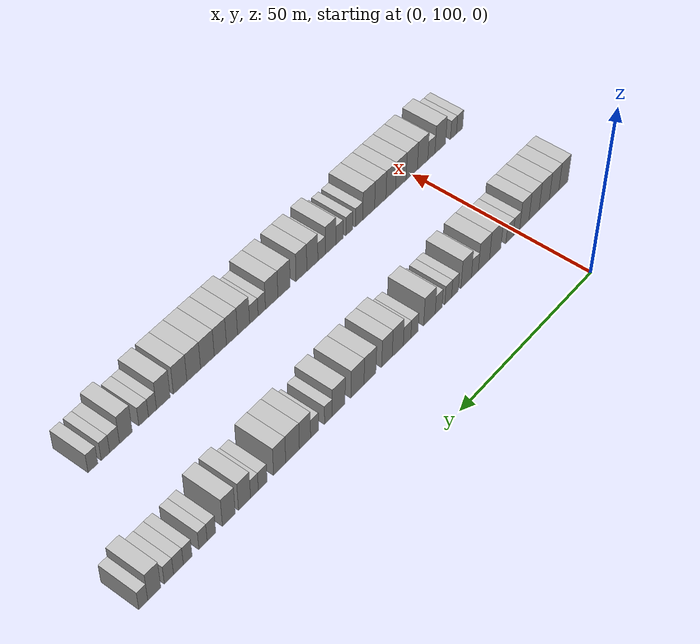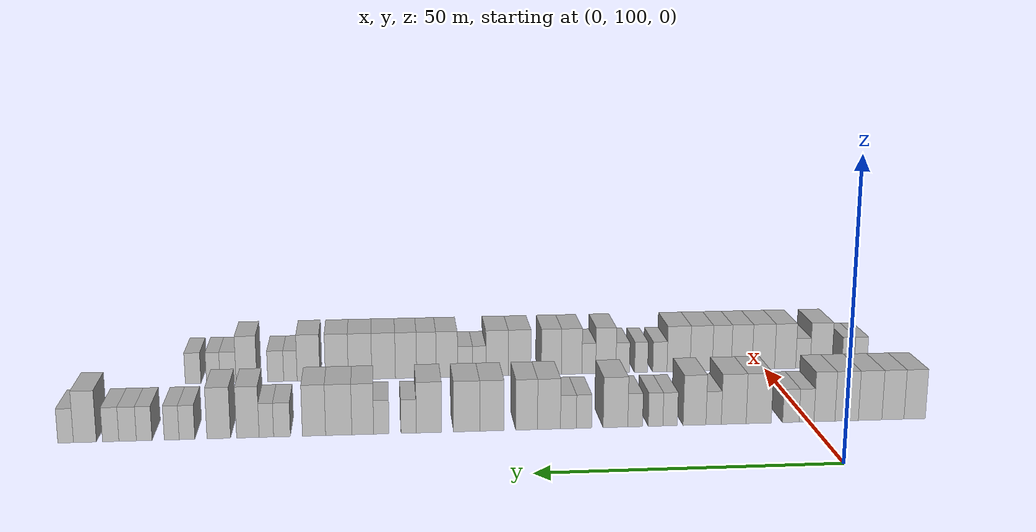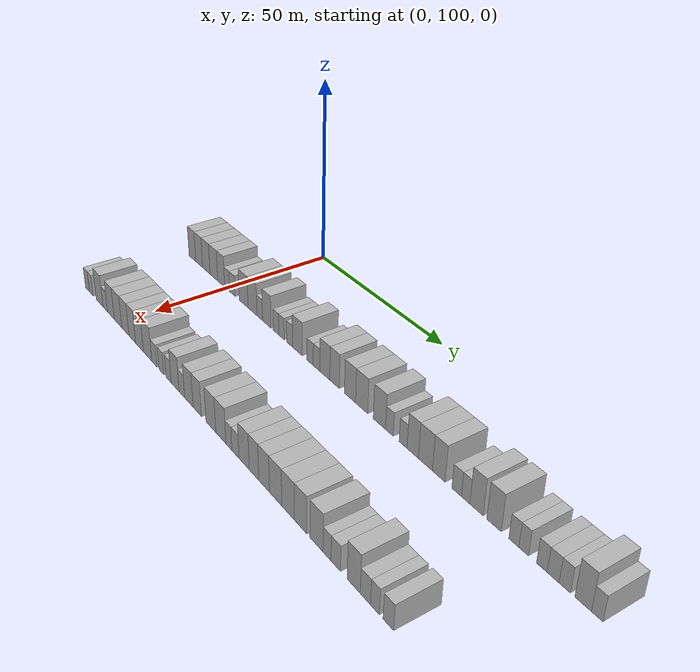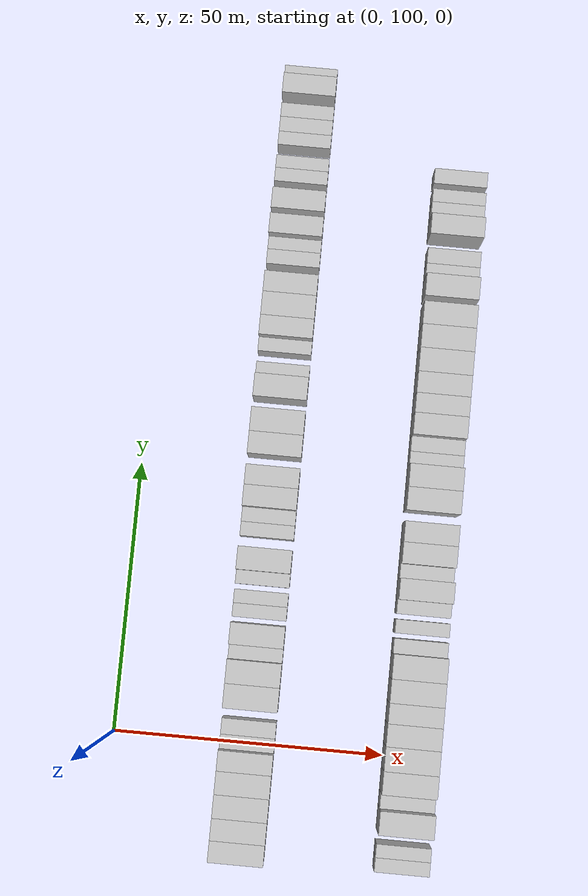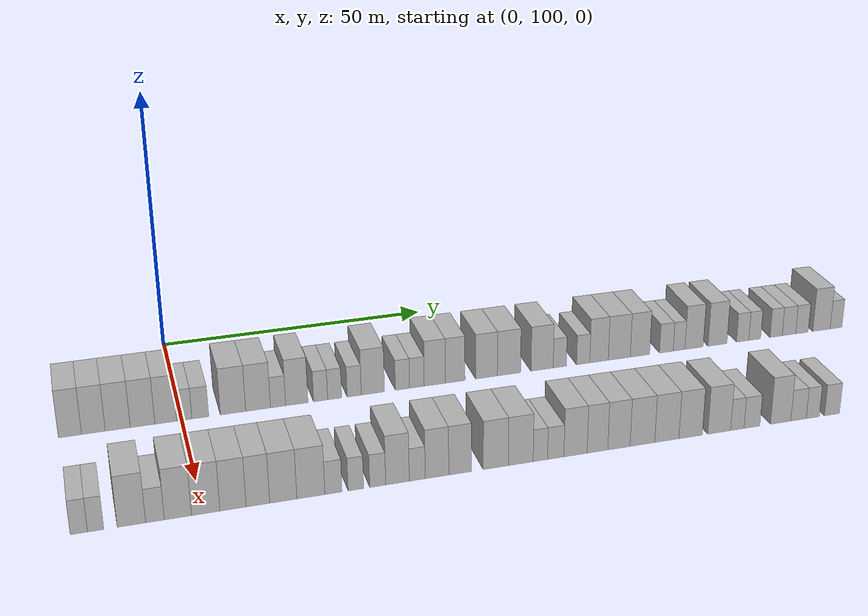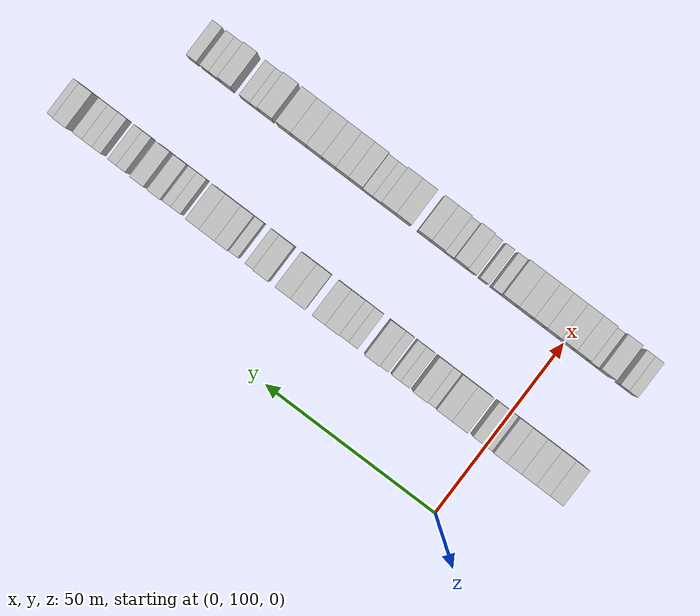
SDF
<sdf version="1.6">
 <world name="default">
  <model name="building_132">
   <static>1</static>
   <pose>25.0000 81.2113 0 0.000000 0.000000 0.000000</pose>
   <link name="link">
    <pose>0 0 4.50 0 0 0</pose>
    <collision name="collision"><geometry><box><size>10.0000 3.8207 9.0000</size></box></geometry></collision>
    <visual name="visual">
     <cast_shadows>0</cast_shadows>
     <geometry><box><size>10.0000 3.8207 9.0000</size></box></geometry>
     <material>
      <script>
       <uri>model://HANNAS_wall/materials/scripts</uri>
       <uri>model://HANNAS_wall/materials/textures</uri>
       <name>vrc/HANNAS_wall</name>
      </script>
     </material>
    </visual>
   </link>
  </model>
  <model name="building_133">
   <static>1</static>
   <pose>25.0000 85.0936 0 0.000000 0.000000 0.000000</pose>
   <link name="link">
    <pose>0 0 4.50 0 0 0</pose>
    <collision name="collision"><geometry><box><size>10.0000 3.9438 9.0000</size></box></geometry></collision>
    <visual name="visual">
     <cast_shadows>0</cast_shadows>
     <geometry><box><size>10.0000 3.9438 9.0000</size></box></geometry>
     <material>
      <script>
       <uri>model://HANNAS_wall/materials/scripts</uri>
       <uri>model://HANNAS_wall/materials/textures</uri>
       <name>vrc/HANNAS_wall</name>
      </script>
     </material>
    </visual>
   </link>
  </model>
  <model name="building_134">
   <static>1</static>
   <pose>25.0000 89.1573 0 0.000000 0.000000 0.000000</pose>
   <link name="link">
    <pose>0 0 4.50 0 0 0</pose>
    <collision name="collision"><geometry><box><size>10.0000 4.1837 9.0000</size></box></geometry></collision>
    <visual name="visual">
     <cast_shadows>0</cast_shadows>
     <geometry><box><size>10.0000 4.1837 9.0000</size></box></geometry>
     <material>
      <script>
       <uri>model://HANNAS_wall/materials/scripts</uri>
       <uri>model://HANNAS_wall/materials/textures</uri>
       <name>vrc/HANNAS_wall</name>
      </script>
     </material>
    </visual>
   </link>
  </model>
  <model name="building_135">
   <static>1</static>
   <pose>25.0000 93.3286 0 0.000000 0.000000 0.000000</pose>
   <link name="link">
    <pose>0 0 4.50 0 0 0</pose>
    <collision name="collision"><geometry><box><size>10.0000 4.1589 9.0000</size></box></geometry></collision>
    <visual name="visual">
     <cast_shadows>0</cast_shadows>
     <geometry><box><size>10.0000 4.1589 9.0000</size></box></geometry>
     <material>
      <script>
       <uri>model://HANNAS_wall/materials/scripts</uri>
       <uri>model://HANNAS_wall/materials/textures</uri>
       <name>vrc/HANNAS_wall</name>
      </script>
     </material>
    </visual>
   </link>
  </model>
  <model name="building_136">
   <static>1</static>
   <pose>25.0000 97.2637 0 0.000000 0.000000 0.000000</pose>
   <link name="link">
    <pose>0 0 4.50 0 0 0</pose>
    <collision name="collision"><geometry><box><size>10.0000 3.7111 9.0000</size></box></geometry></collision>
    <visual name="visual">
     <cast_shadows>0</cast_shadows>
     <geometry><box><size>10.0000 3.7111 9.0000</size></box></geometry>
     <material>
      <script>
       <uri>model://HANNAS_wall/materials/scripts</uri>
       <uri>model://HANNAS_wall/materials/textures</uri>
       <name>vrc/HANNAS_wall</name>
      </script>
     </material>
    </visual>
   </link>
  </model>
  <model name="building_137">
   <static>1</static>
   <pose>25.0000 100.4267 0 0.000000 0.000000 0.000000</pose>
   <link name="link">
    <pose>0 0 3.00 0 0 0</pose>
    <collision name="collision"><geometry><box><size>10.0000 2.6149 6.0000</size></box></geometry></collision>
    <visual name="visual">
     <cast_shadows>0</cast_shadows>
     <geometry><box><size>10.0000 2.6149 6.0000</size></box></geometry>
     <material>
      <script>
       <uri>model://HANNAS_wall/materials/scripts</uri>
       <uri>model://HANNAS_wall/materials/textures</uri>
       <name>vrc/HANNAS_wall</name>
      </script>
     </material>
    </visual>
   </link>
  </model>
  <model name="building_138">
   <static>1</static>
   <pose>25.0000 103.1845 0 0.000000 0.000000 0.000000</pose>
   <link name="link">
    <pose>0 0 3.00 0 0 0</pose>
    <collision name="collision"><geometry><box><size>10.0000 2.9007 6.0000</size></box></geometry></collision>
    <visual name="visual">
     <cast_shadows>0</cast_shadows>
     <geometry><box><size>10.0000 2.9007 6.0000</size></box></geometry>
     <material>
      <script>
       <uri>model://HANNAS_wall/materials/scripts</uri>
       <uri>model://HANNAS_wall/materials/textures</uri>
       <name>vrc/HANNAS_wall</name>
      </script>
     </material>
    </visual>
   </link>
  </model>
  <model name="building_139">
   <static>1</static>
   <pose>25.0000 108.8482 0 0.000000 0.000000 0.000000</pose>
   <link name="link">
    <pose>0 0 4.50 0 0 0</pose>
    <collision name="collision"><geometry><box><size>10.0000 4.4268 9.0000</size></box></geometry></collision>
    <visual name="visual">
     <cast_shadows>0</cast_shadows>
     <geometry><box><size>10.0000 4.4268 9.0000</size></box></geometry>
     <material>
      <script>
       <uri>model://HANNAS_wall/materials/scripts</uri>
       <uri>model://HANNAS_wall/materials/textures</uri>
       <name>vrc/HANNAS_wall</name>
      </script>
     </material>
    </visual>
   </link>
  </model>
  <model name="building_140">
   <static>1</static>
   <pose>25.0000 113.2394 0 0.000000 0.000000 0.000000</pose>
   <link name="link">
    <pose>0 0 4.50 0 0 0</pose>
    <collision name="collision"><geometry><box><size>10.0000 4.3557 9.0000</size></box></geometry></collision>
    <visual name="visual">
     <cast_shadows>0</cast_shadows>
     <geometry><box><size>10.0000 4.3557 9.0000</size></box></geometry>
     <material>
      <script>
       <uri>model://HANNAS_wall/materials/scripts</uri>
       <uri>model://HANNAS_wall/materials/textures</uri>
       <name>vrc/HANNAS_wall</name>
      </script>
     </material>
    </visual>
   </link>
  </model>
  <model name="building_141">
   <static>1</static>
   <pose>25.0000 116.7583 0 0.000000 0.000000 0.000000</pose>
   <link name="link">
    <pose>0 0 3.00 0 0 0</pose>
    <collision name="collision"><geometry><box><size>10.0000 2.6821 6.0000</size></box></geometry></collision>
    <visual name="visual">
     <cast_shadows>0</cast_shadows>
     <geometry><box><size>10.0000 2.6821 6.0000</size></box></geometry>
     <material>
      <script>
       <uri>model://HANNAS_wall/materials/scripts</uri>
       <uri>model://HANNAS_wall/materials/textures</uri>
       <name>vrc/HANNAS_wall</name>
      </script>
     </material>
    </visual>
   </link>
  </model>
  <model name="building_142">
   <static>1</static>
   <pose>25.0000 120.0887 0 0.000000 0.000000 0.000000</pose>
   <link name="link">
    <pose>0 0 4.50 0 0 0</pose>
    <collision name="collision"><geometry><box><size>10.0000 3.9787 9.0000</size></box></geometry></collision>
    <visual name="visual">
     <cast_shadows>0</cast_shadows>
     <geometry><box><size>10.0000 3.9787 9.0000</size></box></geometry>
     <material>
      <script>
       <uri>model://HANNAS_wall/materials/scripts</uri>
       <uri>model://HANNAS_wall/materials/textures</uri>
       <name>vrc/HANNAS_wall</name>
      </script>
     </material>
    </visual>
   </link>
  </model>
  <model name="building_143">
   <static>1</static>
   <pose>25.0000 124.3410 0 0.000000 0.000000 0.000000</pose>
   <link name="link">
    <pose>0 0 3.00 0 0 0</pose>
    <collision name="collision"><geometry><box><size>10.0000 2.5258 6.0000</size></box></geometry></collision>
    <visual name="visual">
     <cast_shadows>0</cast_shadows>
     <geometry><box><size>10.0000 2.5258 6.0000</size></box></geometry>
     <material>
      <script>
       <uri>model://HANNAS_wall/materials/scripts</uri>
       <uri>model://HANNAS_wall/materials/textures</uri>
       <name>vrc/HANNAS_wall</name>
      </script>
     </material>
    </visual>
   </link>
  </model>
  <model name="building_144">
   <static>1</static>
   <pose>25.0000 126.8680 0 0.000000 0.000000 0.000000</pose>
   <link name="link">
    <pose>0 0 3.00 0 0 0</pose>
    <collision name="collision"><geometry><box><size>10.0000 2.5282 6.0000</size></box></geometry></collision>
    <visual name="visual">
     <cast_shadows>0</cast_shadows>
     <geometry><box><size>10.0000 2.5282 6.0000</size></box></geometry>
     <material>
      <script>
       <uri>model://HANNAS_wall/materials/scripts</uri>
       <uri>model://HANNAS_wall/materials/textures</uri>
       <name>vrc/HANNAS_wall</name>
      </script>
     </material>
    </visual>
   </link>
  </model>
  <model name="building_145">
   <static>1</static>
   <pose>25.0000 130.4140 0 0.000000 0.000000 0.000000</pose>
   <link name="link">
    <pose>0 0 3.00 0 0 0</pose>
    <collision name="collision"><geometry><box><size>10.0000 2.5638 6.0000</size></box></geometry></collision>
    <visual name="visual">
     <cast_shadows>0</cast_shadows>
     <geometry><box><size>10.0000 2.5638 6.0000</size></box></geometry>
     <material>
      <script>
       <uri>model://HANNAS_wall/materials/scripts</uri>
       <uri>model://HANNAS_wall/materials/textures</uri>
       <name>vrc/HANNAS_wall</name>
      </script>
     </material>
    </visual>
   </link>
  </model>
  <model name="building_146">
   <static>1</static>
   <pose>25.0000 133.8219 0 0.000000 0.000000 0.000000</pose>
   <link name="link">
    <pose>0 0 4.50 0 0 0</pose>
    <collision name="collision"><geometry><box><size>10.0000 4.2521 9.0000</size></box></geometry></collision>
    <visual name="visual">
     <cast_shadows>0</cast_shadows>
     <geometry><box><size>10.0000 4.2521 9.0000</size></box></geometry>
     <material>
      <script>
       <uri>model://HANNAS_wall/materials/scripts</uri>
       <uri>model://HANNAS_wall/materials/textures</uri>
       <name>vrc/HANNAS_wall</name>
      </script>
     </material>
    </visual>
   </link>
  </model>
  <model name="building_147">
   <static>1</static>
   <pose>25.0000 139.2651 0 0.000000 0.000000 0.000000</pose>
   <link name="link">
    <pose>0 0 3.00 0 0 0</pose>
    <collision name="collision"><geometry><box><size>10.0000 2.6343 6.0000</size></box></geometry></collision>
    <visual name="visual">
     <cast_shadows>0</cast_shadows>
     <geometry><box><size>10.0000 2.6343 6.0000</size></box></geometry>
     <material>
      <script>
       <uri>model://HANNAS_wall/materials/scripts</uri>
       <uri>model://HANNAS_wall/materials/textures</uri>
       <name>vrc/HANNAS_wall</name>
      </script>
     </material>
    </visual>
   </link>
  </model>
  <model name="building_148">
   <static>1</static>
   <pose>25.0000 141.9477 0 0.000000 0.000000 0.000000</pose>
   <link name="link">
    <pose>0 0 3.00 0 0 0</pose>
    <collision name="collision"><geometry><box><size>10.0000 2.7309 6.0000</size></box></geometry></collision>
    <visual name="visual">
     <cast_shadows>0</cast_shadows>
     <geometry><box><size>10.0000 2.7309 6.0000</size></box></geometry>
     <material>
      <script>
       <uri>model://HANNAS_wall/materials/scripts</uri>
       <uri>model://HANNAS_wall/materials/textures</uri>
       <name>vrc/HANNAS_wall</name>
      </script>
     </material>
    </visual>
   </link>
  </model>
  <model name="building_149">
   <static>1</static>
   <pose>25.0000 145.2838 0 0.000000 0.000000 0.000000</pose>
   <link name="link">
    <pose>0 0 4.50 0 0 0</pose>
    <collision name="collision"><geometry><box><size>10.0000 3.9415 9.0000</size></box></geometry></collision>
    <visual name="visual">
     <cast_shadows>0</cast_shadows>
     <geometry><box><size>10.0000 3.9415 9.0000</size></box></geometry>
     <material>
      <script>
       <uri>model://HANNAS_wall/materials/scripts</uri>
       <uri>model://HANNAS_wall/materials/textures</uri>
       <name>vrc/HANNAS_wall</name>
      </script>
     </material>
    </visual>
   </link>
  </model>
  <model name="building_150">
   <static>1</static>
   <pose>25.0000 149.1195 0 0.000000 0.000000 0.000000</pose>
   <link name="link">
    <pose>0 0 4.50 0 0 0</pose>
    <collision name="collision"><geometry><box><size>10.0000 3.7299 9.0000</size></box></geometry></collision>
    <visual name="visual">
     <cast_shadows>0</cast_shadows>
     <geometry><box><size>10.0000 3.7299 9.0000</size></box></geometry>
     <material>
      <script>
       <uri>model://HANNAS_wall/materials/scripts</uri>
       <uri>model://HANNAS_wall/materials/textures</uri>
       <name>vrc/HANNAS_wall</name>
      </script>
     </material>
    </visual>
   </link>
  </model>
  <model name="building_151">
   <static>1</static>
   <pose>25.0000 155.0557 0 0.000000 0.000000 0.000000</pose>
   <link name="link">
    <pose>0 0 4.50 0 0 0</pose>
    <collision name="collision"><geometry><box><size>10.0000 4.1423 9.0000</size></box></geometry></collision>
    <visual name="visual">
     <cast_shadows>0</cast_shadows>
     <geometry><box><size>10.0000 4.1423 9.0000</size></box></geometry>
     <material>
      <script>
       <uri>model://HANNAS_wall/materials/scripts</uri>
       <uri>model://HANNAS_wall/materials/textures</uri>
       <name>vrc/HANNAS_wall</name>
      </script>
     </material>
    </visual>
   </link>
  </model>
  <model name="building_152">
   <static>1</static>
   <pose>25.0000 159.3623 0 0.000000 0.000000 0.000000</pose>
   <link name="link">
    <pose>0 0 4.50 0 0 0</pose>
    <collision name="collision"><geometry><box><size>10.0000 4.4710 9.0000</size></box></geometry></collision>
    <visual name="visual">
     <cast_shadows>0</cast_shadows>
     <geometry><box><size>10.0000 4.4710 9.0000</size></box></geometry>
     <material>
      <script>
       <uri>model://HANNAS_wall/materials/scripts</uri>
       <uri>model://HANNAS_wall/materials/textures</uri>
       <name>vrc/HANNAS_wall</name>
      </script>
     </material>
    </visual>
   </link>
  </model>
  <model name="building_153">
   <static>1</static>
   <pose>25.0000 165.7555 0 0.000000 0.000000 0.000000</pose>
   <link name="link">
    <pose>0 0 4.50 0 0 0</pose>
    <collision name="collision"><geometry><box><size>10.0000 4.3155 9.0000</size></box></geometry></collision>
    <visual name="visual">
     <cast_shadows>0</cast_shadows>
     <geometry><box><size>10.0000 4.3155 9.0000</size></box></geometry>
     <material>
      <script>
       <uri>model://HANNAS_wall/materials/scripts</uri>
       <uri>model://HANNAS_wall/materials/textures</uri>
       <name>vrc/HANNAS_wall</name>
      </script>
     </material>
    </visual>
   </link>
  </model>
  <model name="building_154">
   <static>1</static>
   <pose>25.0000 169.2103 0 0.000000 0.000000 0.000000</pose>
   <link name="link">
    <pose>0 0 3.00 0 0 0</pose>
    <collision name="collision"><geometry><box><size>10.0000 2.5942 6.0000</size></box></geometry></collision>
    <visual name="visual">
     <cast_shadows>0</cast_shadows>
     <geometry><box><size>10.0000 2.5942 6.0000</size></box></geometry>
     <material>
      <script>
       <uri>model://HANNAS_wall/materials/scripts</uri>
       <uri>model://HANNAS_wall/materials/textures</uri>
       <name>vrc/HANNAS_wall</name>
      </script>
     </material>
    </visual>
   </link>
  </model>
  <model name="building_155">
   <static>1</static>
   <pose>25.0000 173.8143 0 0.000000 0.000000 0.000000</pose>
   <link name="link">
    <pose>0 0 3.00 0 0 0</pose>
    <collision name="collision"><geometry><box><size>10.0000 2.6137 6.0000</size></box></geometry></collision>
    <visual name="visual">
     <cast_shadows>0</cast_shadows>
     <geometry><box><size>10.0000 2.6137 6.0000</size></box></geometry>
     <material>
      <script>
       <uri>model://HANNAS_wall/materials/scripts</uri>
       <uri>model://HANNAS_wall/materials/textures</uri>
       <name>vrc/HANNAS_wall</name>
      </script>
     </material>
    </visual>
   </link>
  </model>
  <model name="building_156">
   <static>1</static>
   <pose>25.0000 176.9597 0 0.000000 0.000000 0.000000</pose>
   <link name="link">
    <pose>0 0 4.50 0 0 0</pose>
    <collision name="collision"><geometry><box><size>10.0000 3.6771 9.0000</size></box></geometry></collision>
    <visual name="visual">
     <cast_shadows>0</cast_shadows>
     <geometry><box><size>10.0000 3.6771 9.0000</size></box></geometry>
     <material>
      <script>
       <uri>model://HANNAS_wall/materials/scripts</uri>
       <uri>model://HANNAS_wall/materials/textures</uri>
       <name>vrc/HANNAS_wall</name>
      </script>
     </material>
    </visual>
   </link>
  </model>
  <model name="building_157">
   <static>1</static>
   <pose>25.0000 181.0077 0 0.000000 0.000000 0.000000</pose>
   <link name="link">
    <pose>0 0 4.50 0 0 0</pose>
    <collision name="collision"><geometry><box><size>10.0000 4.4190 9.0000</size></box></geometry></collision>
    <visual name="visual">
     <cast_shadows>0</cast_shadows>
     <geometry><box><size>10.0000 4.4190 9.0000</size></box></geometry>
     <material>
      <script>
       <uri>model://HANNAS_wall/materials/scripts</uri>
       <uri>model://HANNAS_wall/materials/textures</uri>
       <name>vrc/HANNAS_wall</name>
      </script>
     </material>
    </visual>
   </link>
  </model>
  <model name="building_158">
   <static>1</static>
   <pose>25.0000 185.1635 0 0.000000 0.000000 0.000000</pose>
   <link name="link">
    <pose>0 0 4.50 0 0 0</pose>
    <collision name="collision"><geometry><box><size>10.0000 3.8928 9.0000</size></box></geometry></collision>
    <visual name="visual">
     <cast_shadows>0</cast_shadows>
     <geometry><box><size>10.0000 3.8928 9.0000</size></box></geometry>
     <material>
      <script>
       <uri>model://HANNAS_wall/materials/scripts</uri>
       <uri>model://HANNAS_wall/materials/textures</uri>
       <name>vrc/HANNAS_wall</name>
      </script>
     </material>
    </visual>
   </link>
  </model>
  <model name="building_159">
   <static>1</static>
   <pose>25.0000 190.5115 0 0.000000 0.000000 0.000000</pose>
   <link name="link">
    <pose>0 0 3.00 0 0 0</pose>
    <collision name="collision"><geometry><box><size>10.0000 2.8032 6.0000</size></box></geometry></collision>
    <visual name="visual">
     <cast_shadows>0</cast_shadows>
     <geometry><box><size>10.0000 2.8032 6.0000</size></box></geometry>
     <material>
      <script>
       <uri>model://HANNAS_wall/materials/scripts</uri>
       <uri>model://HANNAS_wall/materials/textures</uri>
       <name>vrc/HANNAS_wall</name>
      </script>
     </material>
    </visual>
   </link>
  </model>
  <model name="building_160">
   <static>1</static>
   <pose>25.0000 193.1203 0 0.000000 0.000000 0.000000</pose>
   <link name="link">
    <pose>0 0 3.00 0 0 0</pose>
    <collision name="collision"><geometry><box><size>10.0000 2.4143 6.0000</size></box></geometry></collision>
    <visual name="visual">
     <cast_shadows>0</cast_shadows>
     <geometry><box><size>10.0000 2.4143 6.0000</size></box></geometry>
     <material>
      <script>
       <uri>model://HANNAS_wall/materials/scripts</uri>
       <uri>model://HANNAS_wall/materials/textures</uri>
       <name>vrc/HANNAS_wall</name>
      </script>
     </material>
    </visual>
   </link>
  </model>
  <model name="building_161">
   <static>1</static>
   <pose>25.0000 196.2036 0 0.000000 0.000000 0.000000</pose>
   <link name="link">
    <pose>0 0 4.50 0 0 0</pose>
    <collision name="collision"><geometry><box><size>10.0000 3.7524 9.0000</size></box></geometry></collision>
    <visual name="visual">
     <cast_shadows>0</cast_shadows>
     <geometry><box><size>10.0000 3.7524 9.0000</size></box></geometry>
     <material>
      <script>
       <uri>model://HANNAS_wall/materials/scripts</uri>
       <uri>model://HANNAS_wall/materials/textures</uri>
       <name>vrc/HANNAS_wall</name>
      </script>
     </material>
    </visual>
   </link>
  </model>
  <model name="building_162">
   <static>1</static>
   <pose>25.0000 201.0388 0 0.000000 0.000000 0.000000</pose>
   <link name="link">
    <pose>0 0 4.50 0 0 0</pose>
    <collision name="collision"><geometry><box><size>10.0000 3.9179 9.0000</size></box></geometry></collision>
    <visual name="visual">
     <cast_shadows>0</cast_shadows>
     <geometry><box><size>10.0000 3.9179 9.0000</size></box></geometry>
     <material>
      <script>
       <uri>model://HANNAS_wall/materials/scripts</uri>
       <uri>model://HANNAS_wall/materials/textures</uri>
       <name>vrc/HANNAS_wall</name>
      </script>
     </material>
    </visual>
   </link>
  </model>
  <model name="building_163">
   <static>1</static>
   <pose>25.0000 206.2953 0 0.000000 0.000000 0.000000</pose>
   <link name="link">
    <pose>0 0 3.00 0 0 0</pose>
    <collision name="collision"><geometry><box><size>10.0000 2.5952 6.0000</size></box></geometry></collision>
    <visual name="visual">
     <cast_shadows>0</cast_shadows>
     <geometry><box><size>10.0000 2.5952 6.0000</size></box></geometry>
     <material>
      <script>
       <uri>model://HANNAS_wall/materials/scripts</uri>
       <uri>model://HANNAS_wall/materials/textures</uri>
       <name>vrc/HANNAS_wall</name>
      </script>
     </material>
    </visual>
   </link>
  </model>
  <model name="building_164">
   <static>1</static>
   <pose>25.0000 208.8275 0 0.000000 0.000000 0.000000</pose>
   <link name="link">
    <pose>0 0 3.00 0 0 0</pose>
    <collision name="collision"><geometry><box><size>10.0000 2.4691 6.0000</size></box></geometry></collision>
    <visual name="visual">
     <cast_shadows>0</cast_shadows>
     <geometry><box><size>10.0000 2.4691 6.0000</size></box></geometry>
     <material>
      <script>
       <uri>model://HANNAS_wall/materials/scripts</uri>
       <uri>model://HANNAS_wall/materials/textures</uri>
       <name>vrc/HANNAS_wall</name>
      </script>
     </material>
    </visual>
   </link>
  </model>
  <model name="building_165">
   <static>1</static>
   <pose>25.0000 213.3538 0 0.000000 0.000000 0.000000</pose>
   <link name="link">
    <pose>0 0 3.00 0 0 0</pose>
    <collision name="collision"><geometry><box><size>10.0000 2.5835 6.0000</size></box></geometry></collision>
    <visual name="visual">
     <cast_shadows>0</cast_shadows>
     <geometry><box><size>10.0000 2.5835 6.0000</size></box></geometry>
     <material>
      <script>
       <uri>model://HANNAS_wall/materials/scripts</uri>
       <uri>model://HANNAS_wall/materials/textures</uri>
       <name>vrc/HANNAS_wall</name>
      </script>
     </material>
    </visual>
   </link>
  </model>
  <model name="building_166">
   <static>1</static>
   <pose>25.0000 216.0824 0 0.000000 0.000000 0.000000</pose>
   <link name="link">
    <pose>0 0 3.00 0 0 0</pose>
    <collision name="collision"><geometry><box><size>10.0000 2.8736 6.0000</size></box></geometry></collision>
    <visual name="visual">
     <cast_shadows>0</cast_shadows>
     <geometry><box><size>10.0000 2.8736 6.0000</size></box></geometry>
     <material>
      <script>
       <uri>model://HANNAS_wall/materials/scripts</uri>
       <uri>model://HANNAS_wall/materials/textures</uri>
       <name>vrc/HANNAS_wall</name>
      </script>
     </material>
    </visual>
   </link>
  </model>
  <model name="building_167">
   <static>1</static>
   <pose>25.0000 218.8632 0 0.000000 0.000000 0.000000</pose>
   <link name="link">
    <pose>0 0 3.00 0 0 0</pose>
    <collision name="collision"><geometry><box><size>10.0000 2.6880 6.0000</size></box></geometry></collision>
    <visual name="visual">
     <cast_shadows>0</cast_shadows>
     <geometry><box><size>10.0000 2.6880 6.0000</size></box></geometry>
     <material>
      <script>
       <uri>model://HANNAS_wall/materials/scripts</uri>
       <uri>model://HANNAS_wall/materials/textures</uri>
       <name>vrc/HANNAS_wall</name>
      </script>
     </material>
    </visual>
   </link>
  </model>
  <model name="building_168">
   <static>1</static>
   <pose>25.0000 223.0843 0 0.000000 0.000000 0.000000</pose>
   <link name="link">
    <pose>0 0 4.50 0 0 0</pose>
    <collision name="collision"><geometry><box><size>10.0000 3.7544 9.0000</size></box></geometry></collision>
    <visual name="visual">
     <cast_shadows>0</cast_shadows>
     <geometry><box><size>10.0000 3.7544 9.0000</size></box></geometry>
     <material>
      <script>
       <uri>model://HANNAS_wall/materials/scripts</uri>
       <uri>model://HANNAS_wall/materials/textures</uri>
       <name>vrc/HANNAS_wall</name>
      </script>
     </material>
    </visual>
   </link>
  </model>
  <model name="building_169">
   <static>1</static>
   <pose>25.0000 226.2406 0 0.000000 0.000000 0.000000</pose>
   <link name="link">
    <pose>0 0 3.00 0 0 0</pose>
    <collision name="collision"><geometry><box><size>10.0000 2.5581 6.0000</size></box></geometry></collision>
    <visual name="visual">
     <cast_shadows>0</cast_shadows>
     <geometry><box><size>10.0000 2.5581 6.0000</size></box></geometry>
     <material>
      <script>
       <uri>model://HANNAS_wall/materials/scripts</uri>
       <uri>model://HANNAS_wall/materials/textures</uri>
       <name>vrc/HANNAS_wall</name>
      </script>
     </material>
    </visual>
   </link>
  </model>
  <model name="building_365">
   <static>1</static>
   <pose>55.0000 81.1483 0 0.000000 0.000000 0.000000</pose>
   <link name="link">
    <pose>0 0 3.00 0 0 0</pose>
    <collision name="collision"><geometry><box><size>10.0000 2.5559 6.0000</size></box></geometry></collision>
    <visual name="visual">
     <cast_shadows>0</cast_shadows>
     <geometry><box><size>10.0000 2.5559 6.0000</size></box></geometry>
     <material>
      <script>
       <uri>model://HANNAS_wall/materials/scripts</uri>
       <uri>model://HANNAS_wall/materials/textures</uri>
       <name>vrc/HANNAS_wall</name>
      </script>
     </material>
    </visual>
   </link>
  </model>
  <model name="building_366">
   <static>1</static>
   <pose>55.0000 83.6367 0 0.000000 0.000000 0.000000</pose>
   <link name="link">
    <pose>0 0 3.00 0 0 0</pose>
    <collision name="collision"><geometry><box><size>10.0000 2.4209 6.0000</size></box></geometry></collision>
    <visual name="visual">
     <cast_shadows>0</cast_shadows>
     <geometry><box><size>10.0000 2.4209 6.0000</size></box></geometry>
     <material>
      <script>
       <uri>model://HANNAS_wall/materials/scripts</uri>
       <uri>model://HANNAS_wall/materials/textures</uri>
       <name>vrc/HANNAS_wall</name>
      </script>
     </material>
    </visual>
   </link>
  </model>
  <model name="building_367">
   <static>1</static>
   <pose>55.0000 88.9892 0 0.000000 0.000000 0.000000</pose>
   <link name="link">
    <pose>0 0 4.50 0 0 0</pose>
    <collision name="collision"><geometry><box><size>10.0000 4.2843 9.0000</size></box></geometry></collision>
    <visual name="visual">
     <cast_shadows>0</cast_shadows>
     <geometry><box><size>10.0000 4.2843 9.0000</size></box></geometry>
     <material>
      <script>
       <uri>model://HANNAS_wall/materials/scripts</uri>
       <uri>model://HANNAS_wall/materials/textures</uri>
       <name>vrc/HANNAS_wall</name>
      </script>
     </material>
    </visual>
   </link>
  </model>
  <model name="building_368">
   <static>1</static>
   <pose>55.0000 92.5525 0 0.000000 0.000000 0.000000</pose>
   <link name="link">
    <pose>0 0 3.00 0 0 0</pose>
    <collision name="collision"><geometry><box><size>10.0000 2.8422 6.0000</size></box></geometry></collision>
    <visual name="visual">
     <cast_shadows>0</cast_shadows>
     <geometry><box><size>10.0000 2.8422 6.0000</size></box></geometry>
     <material>
      <script>
       <uri>model://HANNAS_wall/materials/scripts</uri>
       <uri>model://HANNAS_wall/materials/textures</uri>
       <name>vrc/HANNAS_wall</name>
      </script>
     </material>
    </visual>
   </link>
  </model>
  <model name="building_369">
   <static>1</static>
   <pose>55.0000 96.0449 0 0.000000 0.000000 0.000000</pose>
   <link name="link">
    <pose>0 0 4.50 0 0 0</pose>
    <collision name="collision"><geometry><box><size>10.0000 4.1427 9.0000</size></box></geometry></collision>
    <visual name="visual">
     <cast_shadows>0</cast_shadows>
     <geometry><box><size>10.0000 4.1427 9.0000</size></box></geometry>
     <material>
      <script>
       <uri>model://HANNAS_wall/materials/scripts</uri>
       <uri>model://HANNAS_wall/materials/textures</uri>
       <name>vrc/HANNAS_wall</name>
      </script>
     </material>
    </visual>
   </link>
  </model>
  <model name="building_370">
   <static>1</static>
   <pose>55.0000 100.3199 0 0.000000 0.000000 0.000000</pose>
   <link name="link">
    <pose>0 0 4.50 0 0 0</pose>
    <collision name="collision"><geometry><box><size>10.0000 4.4072 9.0000</size></box></geometry></collision>
    <visual name="visual">
     <cast_shadows>0</cast_shadows>
     <geometry><box><size>10.0000 4.4072 9.0000</size></box></geometry>
     <material>
      <script>
       <uri>model://HANNAS_wall/materials/scripts</uri>
       <uri>model://HANNAS_wall/materials/textures</uri>
       <name>vrc/HANNAS_wall</name>
      </script>
     </material>
    </visual>
   </link>
  </model>
  <model name="building_371">
   <static>1</static>
   <pose>55.0000 104.5651 0 0.000000 0.000000 0.000000</pose>
   <link name="link">
    <pose>0 0 4.50 0 0 0</pose>
    <collision name="collision"><geometry><box><size>10.0000 4.0832 9.0000</size></box></geometry></collision>
    <visual name="visual">
     <cast_shadows>0</cast_shadows>
     <geometry><box><size>10.0000 4.0832 9.0000</size></box></geometry>
     <material>
      <script>
       <uri>model://HANNAS_wall/materials/scripts</uri>
       <uri>model://HANNAS_wall/materials/textures</uri>
       <name>vrc/HANNAS_wall</name>
      </script>
     </material>
    </visual>
   </link>
  </model>
  <model name="building_372">
   <static>1</static>
   <pose>55.0000 108.4553 0 0.000000 0.000000 0.000000</pose>
   <link name="link">
    <pose>0 0 4.50 0 0 0</pose>
    <collision name="collision"><geometry><box><size>10.0000 3.6973 9.0000</size></box></geometry></collision>
    <visual name="visual">
     <cast_shadows>0</cast_shadows>
     <geometry><box><size>10.0000 3.6973 9.0000</size></box></geometry>
     <material>
      <script>
       <uri>model://HANNAS_wall/materials/scripts</uri>
       <uri>model://HANNAS_wall/materials/textures</uri>
       <name>vrc/HANNAS_wall</name>
      </script>
     </material>
    </visual>
   </link>
  </model>
  <model name="building_373">
   <static>1</static>
   <pose>55.0000 112.4601 0 0.000000 0.000000 0.000000</pose>
   <link name="link">
    <pose>0 0 4.50 0 0 0</pose>
    <collision name="collision"><geometry><box><size>10.0000 4.3121 9.0000</size></box></geometry></collision>
    <visual name="visual">
     <cast_shadows>0</cast_shadows>
     <geometry><box><size>10.0000 4.3121 9.0000</size></box></geometry>
     <material>
      <script>
       <uri>model://HANNAS_wall/materials/scripts</uri>
       <uri>model://HANNAS_wall/materials/textures</uri>
       <name>vrc/HANNAS_wall</name>
      </script>
     </material>
    </visual>
   </link>
  </model>
  <model name="building_374">
   <static>1</static>
   <pose>55.0000 116.8603 0 0.000000 0.000000 0.000000</pose>
   <link name="link">
    <pose>0 0 4.50 0 0 0</pose>
    <collision name="collision"><geometry><box><size>10.0000 4.4883 9.0000</size></box></geometry></collision>
    <visual name="visual">
     <cast_shadows>0</cast_shadows>
     <geometry><box><size>10.0000 4.4883 9.0000</size></box></geometry>
     <material>
      <script>
       <uri>model://HANNAS_wall/materials/scripts</uri>
       <uri>model://HANNAS_wall/materials/textures</uri>
       <name>vrc/HANNAS_wall</name>
      </script>
     </material>
    </visual>
   </link>
  </model>
  <model name="building_375">
   <static>1</static>
   <pose>55.0000 120.4795 0 0.000000 0.000000 0.000000</pose>
   <link name="link">
    <pose>0 0 3.00 0 0 0</pose>
    <collision name="collision"><geometry><box><size>10.0000 2.7503 6.0000</size></box></geometry></collision>
    <visual name="visual">
     <cast_shadows>0</cast_shadows>
     <geometry><box><size>10.0000 2.7503 6.0000</size></box></geometry>
     <material>
      <script>
       <uri>model://HANNAS_wall/materials/scripts</uri>
       <uri>model://HANNAS_wall/materials/textures</uri>
       <name>vrc/HANNAS_wall</name>
      </script>
     </material>
    </visual>
   </link>
  </model>
  <model name="building_376">
   <static>1</static>
   <pose>55.0000 124.1119 0 0.000000 0.000000 0.000000</pose>
   <link name="link">
    <pose>0 0 3.00 0 0 0</pose>
    <collision name="collision"><geometry><box><size>10.0000 2.5144 6.0000</size></box></geometry></collision>
    <visual name="visual">
     <cast_shadows>0</cast_shadows>
     <geometry><box><size>10.0000 2.5144 6.0000</size></box></geometry>
     <material>
      <script>
       <uri>model://HANNAS_wall/materials/scripts</uri>
       <uri>model://HANNAS_wall/materials/textures</uri>
       <name>vrc/HANNAS_wall</name>
      </script>
     </material>
    </visual>
   </link>
  </model>
  <model name="building_377">
   <static>1</static>
   <pose>55.0000 127.6792 0 0.000000 0.000000 0.000000</pose>
   <link name="link">
    <pose>0 0 3.00 0 0 0</pose>
    <collision name="collision"><geometry><box><size>10.0000 2.6202 6.0000</size></box></geometry></collision>
    <visual name="visual">
     <cast_shadows>0</cast_shadows>
     <geometry><box><size>10.0000 2.6202 6.0000</size></box></geometry>
     <material>
      <script>
       <uri>model://HANNAS_wall/materials/scripts</uri>
       <uri>model://HANNAS_wall/materials/textures</uri>
       <name>vrc/HANNAS_wall</name>
      </script>
     </material>
    </visual>
   </link>
  </model>
  <model name="building_378">
   <static>1</static>
   <pose>55.0000 130.9374 0 0.000000 0.000000 0.000000</pose>
   <link name="link">
    <pose>0 0 4.50 0 0 0</pose>
    <collision name="collision"><geometry><box><size>10.0000 3.8963 9.0000</size></box></geometry></collision>
    <visual name="visual">
     <cast_shadows>0</cast_shadows>
     <geometry><box><size>10.0000 3.8963 9.0000</size></box></geometry>
     <material>
      <script>
       <uri>model://HANNAS_wall/materials/scripts</uri>
       <uri>model://HANNAS_wall/materials/textures</uri>
       <name>vrc/HANNAS_wall</name>
      </script>
     </material>
    </visual>
   </link>
  </model>
  <model name="building_379">
   <static>1</static>
   <pose>55.0000 134.2123 0 0.000000 0.000000 0.000000</pose>
   <link name="link">
    <pose>0 0 3.00 0 0 0</pose>
    <collision name="collision"><geometry><box><size>10.0000 2.6534 6.0000</size></box></geometry></collision>
    <visual name="visual">
     <cast_shadows>0</cast_shadows>
     <geometry><box><size>10.0000 2.6534 6.0000</size></box></geometry>
     <material>
      <script>
       <uri>model://HANNAS_wall/materials/scripts</uri>
       <uri>model://HANNAS_wall/materials/textures</uri>
       <name>vrc/HANNAS_wall</name>
      </script>
     </material>
    </visual>
   </link>
  </model>
  <model name="building_380">
   <static>1</static>
   <pose>55.0000 137.5104 0 0.000000 0.000000 0.000000</pose>
   <link name="link">
    <pose>0 0 4.50 0 0 0</pose>
    <collision name="collision"><geometry><box><size>10.0000 3.9429 9.0000</size></box></geometry></collision>
    <visual name="visual">
     <cast_shadows>0</cast_shadows>
     <geometry><box><size>10.0000 3.9429 9.0000</size></box></geometry>
     <material>
      <script>
       <uri>model://HANNAS_wall/materials/scripts</uri>
       <uri>model://HANNAS_wall/materials/textures</uri>
       <name>vrc/HANNAS_wall</name>
      </script>
     </material>
    </visual>
   </link>
  </model>
  <model name="building_381">
   <static>1</static>
   <pose>55.0000 141.3991 0 0.000000 0.000000 0.000000</pose>
   <link name="link">
    <pose>0 0 4.50 0 0 0</pose>
    <collision name="collision"><geometry><box><size>10.0000 3.8345 9.0000</size></box></geometry></collision>
    <visual name="visual">
     <cast_shadows>0</cast_shadows>
     <geometry><box><size>10.0000 3.8345 9.0000</size></box></geometry>
     <material>
      <script>
       <uri>model://HANNAS_wall/materials/scripts</uri>
       <uri>model://HANNAS_wall/materials/textures</uri>
       <name>vrc/HANNAS_wall</name>
      </script>
     </material>
    </visual>
   </link>
  </model>
  <model name="building_382">
   <static>1</static>
   <pose>55.0000 147.4683 0 0.000000 0.000000 0.000000</pose>
   <link name="link">
    <pose>0 0 4.50 0 0 0</pose>
    <collision name="collision"><geometry><box><size>10.0000 4.3040 9.0000</size></box></geometry></collision>
    <visual name="visual">
     <cast_shadows>0</cast_shadows>
     <geometry><box><size>10.0000 4.3040 9.0000</size></box></geometry>
     <material>
      <script>
       <uri>model://HANNAS_wall/materials/scripts</uri>
       <uri>model://HANNAS_wall/materials/textures</uri>
       <name>vrc/HANNAS_wall</name>
      </script>
     </material>
    </visual>
   </link>
  </model>
  <model name="building_383">
   <static>1</static>
   <pose>55.0000 151.7599 0 0.000000 0.000000 0.000000</pose>
   <link name="link">
    <pose>0 0 4.50 0 0 0</pose>
    <collision name="collision"><geometry><box><size>10.0000 4.2792 9.0000</size></box></geometry></collision>
    <visual name="visual">
     <cast_shadows>0</cast_shadows>
     <geometry><box><size>10.0000 4.2792 9.0000</size></box></geometry>
     <material>
      <script>
       <uri>model://HANNAS_wall/materials/scripts</uri>
       <uri>model://HANNAS_wall/materials/textures</uri>
       <name>vrc/HANNAS_wall</name>
      </script>
     </material>
    </visual>
   </link>
  </model>
  <model name="building_384">
   <static>1</static>
   <pose>55.0000 155.1506 0 0.000000 0.000000 0.000000</pose>
   <link name="link">
    <pose>0 0 3.00 0 0 0</pose>
    <collision name="collision"><geometry><box><size>10.0000 2.5021 6.0000</size></box></geometry></collision>
    <visual name="visual">
     <cast_shadows>0</cast_shadows>
     <geometry><box><size>10.0000 2.5021 6.0000</size></box></geometry>
     <material>
      <script>
       <uri>model://HANNAS_wall/materials/scripts</uri>
       <uri>model://HANNAS_wall/materials/textures</uri>
       <name>vrc/HANNAS_wall</name>
      </script>
     </material>
    </visual>
   </link>
  </model>
  <model name="building_385">
   <static>1</static>
   <pose>55.0000 157.8373 0 0.000000 0.000000 0.000000</pose>
   <link name="link">
    <pose>0 0 3.00 0 0 0</pose>
    <collision name="collision"><geometry><box><size>10.0000 2.8715 6.0000</size></box></geometry></collision>
    <visual name="visual">
     <cast_shadows>0</cast_shadows>
     <geometry><box><size>10.0000 2.8715 6.0000</size></box></geometry>
     <material>
      <script>
       <uri>model://HANNAS_wall/materials/scripts</uri>
       <uri>model://HANNAS_wall/materials/textures</uri>
       <name>vrc/HANNAS_wall</name>
      </script>
     </material>
    </visual>
   </link>
  </model>
  <model name="building_386">
   <static>1</static>
   <pose>55.0000 161.3074 0 0.000000 0.000000 0.000000</pose>
   <link name="link">
    <pose>0 0 4.50 0 0 0</pose>
    <collision name="collision"><geometry><box><size>10.0000 4.0686 9.0000</size></box></geometry></collision>
    <visual name="visual">
     <cast_shadows>0</cast_shadows>
     <geometry><box><size>10.0000 4.0686 9.0000</size></box></geometry>
     <material>
      <script>
       <uri>model://HANNAS_wall/materials/scripts</uri>
       <uri>model://HANNAS_wall/materials/textures</uri>
       <name>vrc/HANNAS_wall</name>
      </script>
     </material>
    </visual>
   </link>
  </model>
  <model name="building_387">
   <static>1</static>
   <pose>55.0000 165.1806 0 0.000000 0.000000 0.000000</pose>
   <link name="link">
    <pose>0 0 4.50 0 0 0</pose>
    <collision name="collision"><geometry><box><size>10.0000 3.6778 9.0000</size></box></geometry></collision>
    <visual name="visual">
     <cast_shadows>0</cast_shadows>
     <geometry><box><size>10.0000 3.6778 9.0000</size></box></geometry>
     <material>
      <script>
       <uri>model://HANNAS_wall/materials/scripts</uri>
       <uri>model://HANNAS_wall/materials/textures</uri>
       <name>vrc/HANNAS_wall</name>
      </script>
     </material>
    </visual>
   </link>
  </model>
  <model name="building_388">
   <static>1</static>
   <pose>55.0000 169.0244 0 0.000000 0.000000 0.000000</pose>
   <link name="link">
    <pose>0 0 4.50 0 0 0</pose>
    <collision name="collision"><geometry><box><size>10.0000 4.0098 9.0000</size></box></geometry></collision>
    <visual name="visual">
     <cast_shadows>0</cast_shadows>
     <geometry><box><size>10.0000 4.0098 9.0000</size></box></geometry>
     <material>
      <script>
       <uri>model://HANNAS_wall/materials/scripts</uri>
       <uri>model://HANNAS_wall/materials/textures</uri>
       <name>vrc/HANNAS_wall</name>
      </script>
     </material>
    </visual>
   </link>
  </model>
  <model name="building_389">
   <static>1</static>
   <pose>55.0000 173.2515 0 0.000000 0.000000 0.000000</pose>
   <link name="link">
    <pose>0 0 4.50 0 0 0</pose>
    <collision name="collision"><geometry><box><size>10.0000 4.4444 9.0000</size></box></geometry></collision>
    <visual name="visual">
     <cast_shadows>0</cast_shadows>
     <geometry><box><size>10.0000 4.4444 9.0000</size></box></geometry>
     <material>
      <script>
       <uri>model://HANNAS_wall/materials/scripts</uri>
       <uri>model://HANNAS_wall/materials/textures</uri>
       <name>vrc/HANNAS_wall</name>
      </script>
     </material>
    </visual>
   </link>
  </model>
  <model name="building_390">
   <static>1</static>
   <pose>55.0000 177.6821 0 0.000000 0.000000 0.000000</pose>
   <link name="link">
    <pose>0 0 4.50 0 0 0</pose>
    <collision name="collision"><geometry><box><size>10.0000 4.4168 9.0000</size></box></geometry></collision>
    <visual name="visual">
     <cast_shadows>0</cast_shadows>
     <geometry><box><size>10.0000 4.4168 9.0000</size></box></geometry>
     <material>
      <script>
       <uri>model://HANNAS_wall/materials/scripts</uri>
       <uri>model://HANNAS_wall/materials/textures</uri>
       <name>vrc/HANNAS_wall</name>
      </script>
     </material>
    </visual>
   </link>
  </model>
  <model name="building_391">
   <static>1</static>
   <pose>55.0000 182.0386 0 0.000000 0.000000 0.000000</pose>
   <link name="link">
    <pose>0 0 4.50 0 0 0</pose>
    <collision name="collision"><geometry><box><size>10.0000 4.2962 9.0000</size></box></geometry></collision>
    <visual name="visual">
     <cast_shadows>0</cast_shadows>
     <geometry><box><size>10.0000 4.2962 9.0000</size></box></geometry>
     <material>
      <script>
       <uri>model://HANNAS_wall/materials/scripts</uri>
       <uri>model://HANNAS_wall/materials/textures</uri>
       <name>vrc/HANNAS_wall</name>
      </script>
     </material>
    </visual>
   </link>
  </model>
  <model name="building_392">
   <static>1</static>
   <pose>55.0000 187.3222 0 0.000000 0.000000 0.000000</pose>
   <link name="link">
    <pose>0 0 4.50 0 0 0</pose>
    <collision name="collision"><geometry><box><size>10.0000 4.2709 9.0000</size></box></geometry></collision>
    <visual name="visual">
     <cast_shadows>0</cast_shadows>
     <geometry><box><size>10.0000 4.2709 9.0000</size></box></geometry>
     <material>
      <script>
       <uri>model://HANNAS_wall/materials/scripts</uri>
       <uri>model://HANNAS_wall/materials/textures</uri>
       <name>vrc/HANNAS_wall</name>
      </script>
     </material>
    </visual>
   </link>
  </model>
  <model name="building_393">
   <static>1</static>
   <pose>55.0000 190.7085 0 0.000000 0.000000 0.000000</pose>
   <link name="link">
    <pose>0 0 3.00 0 0 0</pose>
    <collision name="collision"><geometry><box><size>10.0000 2.5016 6.0000</size></box></geometry></collision>
    <visual name="visual">
     <cast_shadows>0</cast_shadows>
     <geometry><box><size>10.0000 2.5016 6.0000</size></box></geometry>
     <material>
      <script>
       <uri>model://HANNAS_wall/materials/scripts</uri>
       <uri>model://HANNAS_wall/materials/textures</uri>
       <name>vrc/HANNAS_wall</name>
      </script>
     </material>
    </visual>
   </link>
  </model>
  <model name="building_394">
   <static>1</static>
   <pose>55.0000 193.4482 0 0.000000 0.000000 0.000000</pose>
   <link name="link">
    <pose>0 0 3.00 0 0 0</pose>
    <collision name="collision"><geometry><box><size>10.0000 2.9778 6.0000</size></box></geometry></collision>
    <visual name="visual">
     <cast_shadows>0</cast_shadows>
     <geometry><box><size>10.0000 2.9778 6.0000</size></box></geometry>
     <material>
      <script>
       <uri>model://HANNAS_wall/materials/scripts</uri>
       <uri>model://HANNAS_wall/materials/textures</uri>
       <name>vrc/HANNAS_wall</name>
      </script>
     </material>
    </visual>
   </link>
  </model>
  <model name="building_395">
   <static>1</static>
   <pose>55.0000 198.8736 0 0.000000 0.000000 0.000000</pose>
   <link name="link">
    <pose>0 0 4.50 0 0 0</pose>
    <collision name="collision"><geometry><box><size>10.0000 3.8730 9.0000</size></box></geometry></collision>
    <visual name="visual">
     <cast_shadows>0</cast_shadows>
     <geometry><box><size>10.0000 3.8730 9.0000</size></box></geometry>
     <material>
      <script>
       <uri>model://HANNAS_wall/materials/scripts</uri>
       <uri>model://HANNAS_wall/materials/textures</uri>
       <name>vrc/HANNAS_wall</name>
      </script>
     </material>
    </visual>
   </link>
  </model>
  <model name="building_396">
   <static>1</static>
   <pose>55.0000 202.2925 0 0.000000 0.000000 0.000000</pose>
   <link name="link">
    <pose>0 0 3.00 0 0 0</pose>
    <collision name="collision"><geometry><box><size>10.0000 2.9648 6.0000</size></box></geometry></collision>
    <visual name="visual">
     <cast_shadows>0</cast_shadows>
     <geometry><box><size>10.0000 2.9648 6.0000</size></box></geometry>
     <material>
      <script>
       <uri>model://HANNAS_wall/materials/scripts</uri>
       <uri>model://HANNAS_wall/materials/textures</uri>
       <name>vrc/HANNAS_wall</name>
      </script>
     </material>
    </visual>
   </link>
  </model>
  <model name="building_397">
   <static>1</static>
   <pose>55.0000 205.0317 0 0.000000 0.000000 0.000000</pose>
   <link name="link">
    <pose>0 0 3.00 0 0 0</pose>
    <collision name="collision"><geometry><box><size>10.0000 2.5137 6.0000</size></box></geometry></collision>
    <visual name="visual">
     <cast_shadows>0</cast_shadows>
     <geometry><box><size>10.0000 2.5137 6.0000</size></box></geometry>
     <material>
      <script>
       <uri>model://HANNAS_wall/materials/scripts</uri>
       <uri>model://HANNAS_wall/materials/textures</uri>
       <name>vrc/HANNAS_wall</name>
      </script>
     </material>
    </visual>
   </link>
  </model>
  <model name="building_398">
   <static>1</static>
   <pose>55.0000 208.7419 0 0.000000 0.000000 0.000000</pose>
   <link name="link">
    <pose>0 0 3.00 0 0 0</pose>
    <collision name="collision"><geometry><box><size>10.0000 2.9067 6.0000</size></box></geometry></collision>
    <visual name="visual">
     <cast_shadows>0</cast_shadows>
     <geometry><box><size>10.0000 2.9067 6.0000</size></box></geometry>
     <material>
      <script>
       <uri>model://HANNAS_wall/materials/scripts</uri>
       <uri>model://HANNAS_wall/materials/textures</uri>
       <name>vrc/HANNAS_wall</name>
      </script>
     </material>
    </visual>
   </link>
  </model>
 </world>
</sdf>
